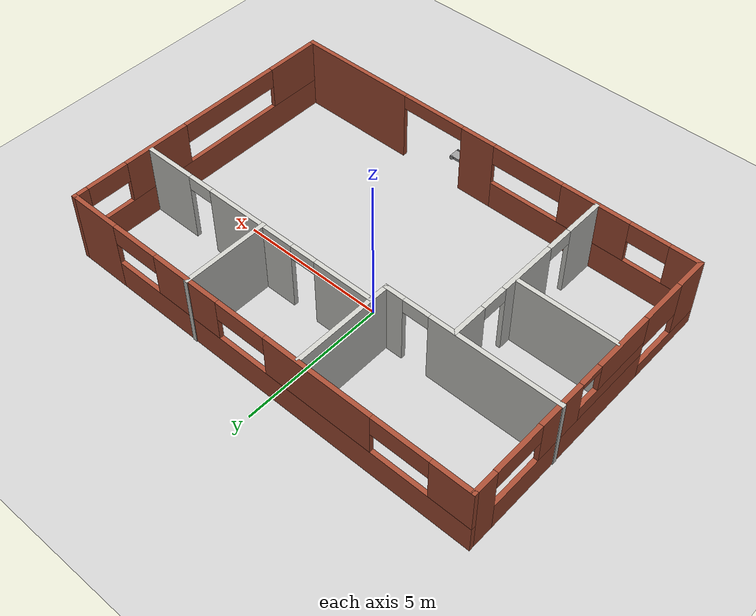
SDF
<sdf version="1.6">
 <world name="default">
  <model name="ground_plane">
   <static>1</static>
   <link name="link">
    <collision name="collision">
     <geometry><plane><normal>0 0 1</normal><size>100 100</size></plane></geometry>
     <surface>
      <contact><collide_bitmask>65535</collide_bitmask></contact>
      <friction><ode><mu>100</mu><mu2>50</mu2></ode></friction>
     </surface>
    </collision>
    <visual name="visual">
     <cast_shadows>0</cast_shadows>
     <geometry><plane><normal>0 0 1</normal><size>100 100</size></plane></geometry>
     <material>
      <script><uri>file://media/materials/scripts/gazebo.material</uri><name>Gazebo/Grey</name></script>
     </material>
    </visual>
   </link>
  </model>
  <model name="MyrobotHome">
   <pose>0.512352 -0.835088 0 0 -0 0</pose>
   <link name="Wall_12">
    <pose>0.011552 -4.93661 0 0 -0 3.14159</pose>
    <visual name="Wall_12_Visual_0">
     <pose>-5.40953 0 1.25 0 -0 0</pose>
     <geometry><box><size>4.18094 0.15 2.5</size></box></geometry>
     <material>
      <script><uri>file://media/materials/scripts/gazebo.material</uri><name>Gazebo/Bricks</name></script>
      <ambient>1 1 1 1</ambient>
     </material>
     <meta><layer>0</layer></meta>
    </visual>
    <collision name="Wall_12_Collision_0">
     <geometry><box><size>4.18094 0.15 2.5</size></box></geometry>
     <pose>-5.40953 0 1.25 0 -0 0</pose>
    </collision>
    <visual name="Wall_12_Visual_1">
     <pose>-0.385262 0 1.25 0 -0 0</pose>
     <geometry><box><size>1.2517 0.15 2.5</size></box></geometry>
     <material>
      <script><uri>file://media/materials/scripts/gazebo.material</uri><name>Gazebo/Bricks</name></script>
      <ambient>1 1 1 1</ambient>
     </material>
     <meta><layer>0</layer></meta>
    </visual>
    <collision name="Wall_12_Collision_1">
     <geometry><box><size>1.2517 0.15 2.5</size></box></geometry>
     <pose>-0.385262 0 1.25 0 -0 0</pose>
    </collision>
    <visual name="Wall_12_Visual_2">
     <pose>3.87029 0 0.5 0 -0 0</pose>
     <geometry><box><size>7.25941 0.15 1</size></box></geometry>
     <material>
      <script><uri>file://media/materials/scripts/gazebo.material</uri><name>Gazebo/Bricks</name></script>
      <ambient>1 1 1 1</ambient>
     </material>
     <meta><layer>0</layer></meta>
    </visual>
    <collision name="Wall_12_Collision_2">
     <geometry><box><size>7.25941 0.15 1</size></box></geometry>
     <pose>3.87029 0 0.5 0 -0 0</pose>
    </collision>
    <visual name="Wall_12_Visual_3">
     <pose>3.93946 0 1.75 0 -0 0</pose>
     <geometry><box><size>2.37775 0.15 1.5</size></box></geometry>
     <material>
      <script><uri>file://media/materials/scripts/gazebo.material</uri><name>Gazebo/Bricks</name></script>
      <ambient>1 1 1 1</ambient>
     </material>
     <meta><layer>0</layer></meta>
    </visual>
    <collision name="Wall_12_Collision_3">
     <geometry><box><size>2.37775 0.15 1.5</size></box></geometry>
     <pose>3.93946 0 1.75 0 -0 0</pose>
    </collision>
    <visual name="Wall_12_Visual_4">
     <pose>6.97567 0 1.75 0 -0 0</pose>
     <geometry><box><size>1.04867 0.15 1.5</size></box></geometry>
     <material>
      <script><uri>file://media/materials/scripts/gazebo.material</uri><name>Gazebo/Bricks</name></script>
      <ambient>1 1 1 1</ambient>
     </material>
     <meta><layer>0</layer></meta>
    </visual>
    <collision name="Wall_12_Collision_4">
     <geometry><box><size>1.04867 0.15 1.5</size></box></geometry>
     <pose>6.97567 0 1.75 0 -0 0</pose>
    </collision>
    <visual name="Wall_12_Visual_5">
     <pose>1.49559 0 2.15 0 -0 0</pose>
     <geometry><box><size>2.51 0.15 0.7</size></box></geometry>
     <material>
      <script><uri>file://media/materials/scripts/gazebo.material</uri><name>Gazebo/Bricks</name></script>
      <ambient>1 1 1 1</ambient>
     </material>
     <meta><layer>0</layer></meta>
    </visual>
    <collision name="Wall_12_Collision_5">
     <geometry><box><size>2.51 0.15 0.7</size></box></geometry>
     <pose>1.49559 0 2.15 0 -0 0</pose>
    </collision>
    <visual name="Wall_12_Visual_6">
     <pose>5.78983 0 2.15 0 -0 0</pose>
     <geometry><box><size>1.323 0.15 0.7</size></box></geometry>
     <material>
      <script><uri>file://media/materials/scripts/gazebo.material</uri><name>Gazebo/Bricks</name></script>
      <ambient>1 1 1 1</ambient>
     </material>
     <meta><layer>0</layer></meta>
    </visual>
    <collision name="Wall_12_Collision_6">
     <geometry><box><size>1.323 0.15 0.7</size></box></geometry>
     <pose>5.78983 0 2.15 0 -0 0</pose>
    </collision>
    <visual name="Wall_12_Visual_7">
     <pose>-2.16508 0 2.25 0 -0 0</pose>
     <geometry><box><size>2.30795 0.15 0.5</size></box></geometry>
     <material>
      <script><uri>file://media/materials/scripts/gazebo.material</uri><name>Gazebo/Bricks</name></script>
      <ambient>1 1 1 1</ambient>
     </material>
     <meta><layer>0</layer></meta>
    </visual>
    <collision name="Wall_12_Collision_7">
     <geometry><box><size>2.30795 0.15 0.5</size></box></geometry>
     <pose>-2.16508 0 2.25 0 -0 0</pose>
    </collision>
   </link>
   <link name="Wall_14">
    <pose>7.43655 -0.011605 0 0 -0 -1.5708</pose>
    <visual name="Wall_14_Visual_0">
     <pose>-4.74176 0 1.25 0 -0 0</pose>
     <geometry><box><size>0.516491 0.15 2.5</size></box></geometry>
     <material>
      <script><uri>file://media/materials/scripts/gazebo.material</uri><name>Gazebo/Bricks</name></script>
      <ambient>1 1 1 1</ambient>
     </material>
     <meta><layer>0</layer></meta>
    </visual>
    <collision name="Wall_14_Collision_0">
     <geometry><box><size>0.516491 0.15 2.5</size></box></geometry>
     <pose>-4.74176 0 1.25 0 -0 0</pose>
    </collision>
    <visual name="Wall_14_Visual_1">
     <pose>0.258245 0 0.5 0 -0 0</pose>
     <geometry><box><size>9.48351 0.15 1</size></box></geometry>
     <material>
      <script><uri>file://media/materials/scripts/gazebo.material</uri><name>Gazebo/Bricks</name></script>
      <ambient>1 1 1 1</ambient>
     </material>
     <meta><layer>0</layer></meta>
    </visual>
    <collision name="Wall_14_Collision_1">
     <geometry><box><size>9.48351 0.15 1</size></box></geometry>
     <pose>0.258245 0 0.5 0 -0 0</pose>
    </collision>
    <visual name="Wall_14_Visual_2">
     <pose>-1.86065 0 1.75 0 -0 0</pose>
     <geometry><box><size>2.35771 0.15 1.5</size></box></geometry>
     <material>
      <script><uri>file://media/materials/scripts/gazebo.material</uri><name>Gazebo/Bricks</name></script>
      <ambient>1 1 1 1</ambient>
     </material>
     <meta><layer>0</layer></meta>
    </visual>
    <collision name="Wall_14_Collision_2">
     <geometry><box><size>2.35771 0.15 1.5</size></box></geometry>
     <pose>-1.86065 0 1.75 0 -0 0</pose>
    </collision>
    <visual name="Wall_14_Visual_3">
     <pose>3.9871 0 1.75 0 -0 0</pose>
     <geometry><box><size>2.0258 0.15 1.5</size></box></geometry>
     <material>
      <script><uri>file://media/materials/scripts/gazebo.material</uri><name>Gazebo/Bricks</name></script>
      <ambient>1 1 1 1</ambient>
     </material>
     <meta><layer>0</layer></meta>
    </visual>
    <collision name="Wall_14_Collision_3">
     <geometry><box><size>2.0258 0.15 1.5</size></box></geometry>
     <pose>3.9871 0 1.75 0 -0 0</pose>
    </collision>
    <visual name="Wall_14_Visual_4">
     <pose>-3.76151 0 2.15 0 -0 0</pose>
     <geometry><box><size>1.444 0.15 0.7</size></box></geometry>
     <material>
      <script><uri>file://media/materials/scripts/gazebo.material</uri><name>Gazebo/Bricks</name></script>
      <ambient>1 1 1 1</ambient>
     </material>
     <meta><layer>0</layer></meta>
    </visual>
    <collision name="Wall_14_Collision_4">
     <geometry><box><size>1.444 0.15 0.7</size></box></geometry>
     <pose>-3.76151 0 2.15 0 -0 0</pose>
    </collision>
    <visual name="Wall_14_Visual_5">
     <pose>1.1462 0 2.15 0 -0 0</pose>
     <geometry><box><size>3.656 0.15 0.7</size></box></geometry>
     <material>
      <script><uri>file://media/materials/scripts/gazebo.material</uri><name>Gazebo/Bricks</name></script>
      <ambient>1 1 1 1</ambient>
     </material>
     <meta><layer>0</layer></meta>
    </visual>
    <collision name="Wall_14_Collision_5">
     <geometry><box><size>3.656 0.15 0.7</size></box></geometry>
     <pose>1.1462 0 2.15 0 -0 0</pose>
    </collision>
   </link>
   <link name="Wall_17">
    <collision name="Wall_17_Collision">
     <geometry><box><size>3.5 0.15 2.5</size></box></geometry>
     <pose>0 0 1.25 0 -0 0</pose>
    </collision>
    <visual name="Wall_17_Visual">
     <pose>0 0 1.25 0 -0 0</pose>
     <geometry><box><size>3.5 0.15 2.5</size></box></geometry>
     <material>
      <script><uri>file://media/materials/scripts/gazebo.material</uri><name>Gazebo/CeilingTiled</name></script>
      <ambient>1 1 1 1</ambient>
     </material>
     <meta><layer>0</layer></meta>
    </visual>
    <pose>-1.58655 3.16783 0 0 -0 -1.5708</pose>
   </link>
   <link name="Wall_19">
    <pose>-4.51155 1.49283 0 0 -0 3.14159</pose>
    <visual name="Wall_19_Visual_0">
     <pose>-2.64038 0 1.25 0 -0 0</pose>
     <geometry><box><size>0.719238 0.15 2.5</size></box></geometry>
     <material>
      <script><uri>file://media/materials/scripts/gazebo.material</uri><name>Gazebo/CeilingTiled</name></script>
      <ambient>1 1 1 1</ambient>
     </material>
     <meta><layer>0</layer></meta>
    </visual>
    <collision name="Wall_19_Collision_0">
     <geometry><box><size>0.719238 0.15 2.5</size></box></geometry>
     <pose>-2.64038 0 1.25 0 -0 0</pose>
    </collision>
    <visual name="Wall_19_Visual_1">
     <pose>0.809619 0 1.25 0 -0 0</pose>
     <geometry><box><size>4.38076 0.15 2.5</size></box></geometry>
     <material>
      <script><uri>file://media/materials/scripts/gazebo.material</uri><name>Gazebo/CeilingTiled</name></script>
      <ambient>1 1 1 1</ambient>
     </material>
     <meta><layer>0</layer></meta>
    </visual>
    <collision name="Wall_19_Collision_1">
     <geometry><box><size>4.38076 0.15 2.5</size></box></geometry>
     <pose>0.809619 0 1.25 0 -0 0</pose>
    </collision>
    <visual name="Wall_19_Visual_2">
     <pose>-1.83076 0 2.25 0 -0 0</pose>
     <geometry><box><size>0.9 0.15 0.5</size></box></geometry>
     <material>
      <script><uri>file://media/materials/scripts/gazebo.material</uri><name>Gazebo/CeilingTiled</name></script>
      <ambient>1 1 1 1</ambient>
     </material>
     <meta><layer>0</layer></meta>
    </visual>
    <collision name="Wall_19_Collision_2">
     <geometry><box><size>0.9 0.15 0.5</size></box></geometry>
     <pose>-1.83076 0 2.25 0 -0 0</pose>
    </collision>
   </link>
   <link name="Wall_2">
    <pose>0.011552 4.9134 0 0 -0 3.14159</pose>
    <visual name="Wall_2_Visual_0">
     <pose>-6.56615 0 1.25 0 -0 0</pose>
     <geometry><box><size>1.86771 0.15 2.5</size></box></geometry>
     <material>
      <script><uri>file://media/materials/scripts/gazebo.material</uri><name>Gazebo/Bricks</name></script>
      <ambient>1 1 1 1</ambient>
     </material>
     <meta><layer>0</layer></meta>
    </visual>
    <collision name="Wall_2_Collision_0">
     <geometry><box><size>1.86771 0.15 2.5</size></box></geometry>
     <pose>-6.56615 0 1.25 0 -0 0</pose>
    </collision>
    <visual name="Wall_2_Visual_1">
     <pose>0.933854 0 0.5 0 -0 0</pose>
     <geometry><box><size>13.1323 0.15 1</size></box></geometry>
     <material>
      <script><uri>file://media/materials/scripts/gazebo.material</uri><name>Gazebo/Bricks</name></script>
      <ambient>1 1 1 1</ambient>
     </material>
     <meta><layer>0</layer></meta>
    </visual>
    <collision name="Wall_2_Collision_1">
     <geometry><box><size>13.1323 0.15 1</size></box></geometry>
     <pose>0.933854 0 0.5 0 -0 0</pose>
    </collision>
    <visual name="Wall_2_Visual_2">
     <pose>-2.658 0 1.75 0 -0 0</pose>
     <geometry><box><size>2.49858 0.15 1.5</size></box></geometry>
     <material>
      <script><uri>file://media/materials/scripts/gazebo.material</uri><name>Gazebo/Bricks</name></script>
      <ambient>1 1 1 1</ambient>
     </material>
     <meta><layer>0</layer></meta>
    </visual>
    <collision name="Wall_2_Collision_2">
     <geometry><box><size>2.49858 0.15 1.5</size></box></geometry>
     <pose>-2.658 0 1.75 0 -0 0</pose>
    </collision>
    <visual name="Wall_2_Visual_3">
     <pose>2.28018 0 1.75 0 -0 0</pose>
     <geometry><box><size>3.7658 0.15 1.5</size></box></geometry>
     <material>
      <script><uri>file://media/materials/scripts/gazebo.material</uri><name>Gazebo/Bricks</name></script>
      <ambient>1 1 1 1</ambient>
     </material>
     <meta><layer>0</layer></meta>
    </visual>
    <collision name="Wall_2_Collision_3">
     <geometry><box><size>3.7658 0.15 1.5</size></box></geometry>
     <pose>2.28018 0 1.75 0 -0 0</pose>
    </collision>
    <visual name="Wall_2_Visual_4">
     <pose>6.79454 0 1.75 0 -0 0</pose>
     <geometry><box><size>1.41091 0.15 1.5</size></box></geometry>
     <material>
      <script><uri>file://media/materials/scripts/gazebo.material</uri><name>Gazebo/Bricks</name></script>
      <ambient>1 1 1 1</ambient>
     </material>
     <meta><layer>0</layer></meta>
    </visual>
    <collision name="Wall_2_Collision_4">
     <geometry><box><size>1.41091 0.15 1.5</size></box></geometry>
     <pose>6.79454 0 1.75 0 -0 0</pose>
    </collision>
    <visual name="Wall_2_Visual_5">
     <pose>-4.76979 0 2.15 0 -0 0</pose>
     <geometry><box><size>1.725 0.15 0.7</size></box></geometry>
     <material>
      <script><uri>file://media/materials/scripts/gazebo.material</uri><name>Gazebo/Bricks</name></script>
      <ambient>1 1 1 1</ambient>
     </material>
     <meta><layer>0</layer></meta>
    </visual>
    <collision name="Wall_2_Collision_5">
     <geometry><box><size>1.725 0.15 0.7</size></box></geometry>
     <pose>-4.76979 0 2.15 0 -0 0</pose>
    </collision>
    <visual name="Wall_2_Visual_6">
     <pose>-0.505715 0 2.15 0 -0 0</pose>
     <geometry><box><size>1.806 0.15 0.7</size></box></geometry>
     <material>
      <script><uri>file://media/materials/scripts/gazebo.material</uri><name>Gazebo/Bricks</name></script>
      <ambient>1 1 1 1</ambient>
     </material>
     <meta><layer>0</layer></meta>
    </visual>
    <collision name="Wall_2_Collision_6">
     <geometry><box><size>1.806 0.15 0.7</size></box></geometry>
     <pose>-0.505715 0 2.15 0 -0 0</pose>
    </collision>
    <visual name="Wall_2_Visual_7">
     <pose>5.12608 0 2.15 0 -0 0</pose>
     <geometry><box><size>1.926 0.15 0.7</size></box></geometry>
     <material>
      <script><uri>file://media/materials/scripts/gazebo.material</uri><name>Gazebo/Bricks</name></script>
      <ambient>1 1 1 1</ambient>
     </material>
     <meta><layer>0</layer></meta>
    </visual>
    <collision name="Wall_2_Collision_7">
     <geometry><box><size>1.926 0.15 0.7</size></box></geometry>
     <pose>5.12608 0 2.15 0 -0 0</pose>
    </collision>
   </link>
   <link name="Wall_21">
    <collision name="Wall_21_Collision">
     <geometry><box><size>3 0.15 2.5</size></box></geometry>
     <pose>0 0 1.25 0 -0 0</pose>
    </collision>
    <visual name="Wall_21_Visual">
     <pose>0 0 1.25 0 -0 0</pose>
     <geometry><box><size>3 0.15 2.5</size></box></geometry>
     <material>
      <script><uri>file://media/materials/scripts/gazebo.material</uri><name>Gazebo/CeilingTiled</name></script>
      <ambient>1 1 1 1</ambient>
     </material>
     <meta><layer>0</layer></meta>
    </visual>
    <pose>2.56885 3.5116 0 0 -0 -1.5708</pose>
   </link>
   <link name="Wall_24">
    <pose>2.89068 2.10059 0 0 -0 0</pose>
    <visual name="Wall_24_Visual_0">
     <pose>-3.45052 0 1.25 0 -0 0</pose>
     <geometry><box><size>2.09897 0.15 2.5</size></box></geometry>
     <material>
      <script><uri>file://media/materials/scripts/gazebo.material</uri><name>Gazebo/CeilingTiled</name></script>
      <ambient>1 1 1 1</ambient>
     </material>
     <meta><layer>0</layer></meta>
    </visual>
    <collision name="Wall_24_Collision_0">
     <geometry><box><size>2.09897 0.15 2.5</size></box></geometry>
     <pose>-3.45052 0 1.25 0 -0 0</pose>
    </collision>
    <visual name="Wall_24_Visual_1">
     <pose>0.150838 0 1.25 0 -0 0</pose>
     <geometry><box><size>3.30374 0.15 2.5</size></box></geometry>
     <material>
      <script><uri>file://media/materials/scripts/gazebo.material</uri><name>Gazebo/CeilingTiled</name></script>
      <ambient>1 1 1 1</ambient>
     </material>
     <meta><layer>0</layer></meta>
    </visual>
    <collision name="Wall_24_Collision_1">
     <geometry><box><size>3.30374 0.15 2.5</size></box></geometry>
     <pose>0.150838 0 1.25 0 -0 0</pose>
    </collision>
    <visual name="Wall_24_Visual_2">
     <pose>3.60135 0 1.25 0 -0 0</pose>
     <geometry><box><size>1.79729 0.15 2.5</size></box></geometry>
     <material>
      <script><uri>file://media/materials/scripts/gazebo.material</uri><name>Gazebo/CeilingTiled</name></script>
      <ambient>1 1 1 1</ambient>
     </material>
     <meta><layer>0</layer></meta>
    </visual>
    <collision name="Wall_24_Collision_2">
     <geometry><box><size>1.79729 0.15 2.5</size></box></geometry>
     <pose>3.60135 0 1.25 0 -0 0</pose>
    </collision>
    <visual name="Wall_24_Visual_3">
     <pose>-1.95103 0 2.25 0 -0 0</pose>
     <geometry><box><size>0.9 0.15 0.5</size></box></geometry>
     <material>
      <script><uri>file://media/materials/scripts/gazebo.material</uri><name>Gazebo/CeilingTiled</name></script>
      <ambient>1 1 1 1</ambient>
     </material>
     <meta><layer>0</layer></meta>
    </visual>
    <collision name="Wall_24_Collision_3">
     <geometry><box><size>0.9 0.15 0.5</size></box></geometry>
     <pose>-1.95103 0 2.25 0 -0 0</pose>
    </collision>
    <visual name="Wall_24_Visual_4">
     <pose>2.25271 0 2.25 0 -0 0</pose>
     <geometry><box><size>0.9 0.15 0.5</size></box></geometry>
     <material>
      <script><uri>file://media/materials/scripts/gazebo.material</uri><name>Gazebo/CeilingTiled</name></script>
      <ambient>1 1 1 1</ambient>
     </material>
     <meta><layer>0</layer></meta>
    </visual>
    <collision name="Wall_24_Collision_4">
     <geometry><box><size>0.9 0.15 0.5</size></box></geometry>
     <pose>2.25271 0 2.25 0 -0 0</pose>
    </collision>
   </link>
   <link name="Wall_3">
    <pose>-7.41345 -0.011605 0 0 -0 -1.5708</pose>
    <visual name="Wall_3_Visual_0">
     <pose>-4.56075 0 1.25 0 -0 0</pose>
     <geometry><box><size>0.8785 0.15 2.5</size></box></geometry>
     <material>
      <script><uri>file://media/materials/scripts/gazebo.material</uri><name>Gazebo/Bricks</name></script>
      <ambient>1 1 1 1</ambient>
     </material>
     <meta><layer>0</layer></meta>
    </visual>
    <collision name="Wall_3_Collision_0">
     <geometry><box><size>0.8785 0.15 2.5</size></box></geometry>
     <pose>-4.56075 0 1.25 0 -0 0</pose>
    </collision>
    <visual name="Wall_3_Visual_1">
     <pose>-0.923333 0 0.5 0 -0 0</pose>
     <geometry><box><size>6.39633 0.15 1</size></box></geometry>
     <material>
      <script><uri>file://media/materials/scripts/gazebo.material</uri><name>Gazebo/Bricks</name></script>
      <ambient>1 1 1 1</ambient>
     </material>
     <meta><layer>0</layer></meta>
    </visual>
    <collision name="Wall_3_Collision_1">
     <geometry><box><size>6.39633 0.15 1</size></box></geometry>
     <pose>-0.923333 0 0.5 0 -0 0</pose>
    </collision>
    <visual name="Wall_3_Visual_2">
     <pose>3.63742 0 0.25 0 -0 0</pose>
     <geometry><box><size>2.72517 0.15 0.5</size></box></geometry>
     <material>
      <script><uri>file://media/materials/scripts/gazebo.material</uri><name>Gazebo/Bricks</name></script>
      <ambient>1 1 1 1</ambient>
     </material>
     <meta><layer>0</layer></meta>
    </visual>
    <collision name="Wall_3_Collision_2">
     <geometry><box><size>2.72517 0.15 0.5</size></box></geometry>
     <pose>3.63742 0 0.25 0 -0 0</pose>
    </collision>
    <visual name="Wall_3_Visual_3">
     <pose>4.42963 0 1.5 0 -0 0</pose>
     <geometry><box><size>1.14074 0.15 2</size></box></geometry>
     <material>
      <script><uri>file://media/materials/scripts/gazebo.material</uri><name>Gazebo/Bricks</name></script>
      <ambient>1 1 1 1</ambient>
     </material>
     <meta><layer>0</layer></meta>
    </visual>
    <collision name="Wall_3_Collision_3">
     <geometry><box><size>1.14074 0.15 2</size></box></geometry>
     <pose>4.42963 0 1.5 0 -0 0</pose>
    </collision>
    <visual name="Wall_3_Visual_4">
     <pose>-1.49862 0 1.75 0 -0 0</pose>
     <geometry><box><size>1.67375 0.15 1.5</size></box></geometry>
     <material>
      <script><uri>file://media/materials/scripts/gazebo.material</uri><name>Gazebo/Bricks</name></script>
      <ambient>1 1 1 1</ambient>
     </material>
     <meta><layer>0</layer></meta>
    </visual>
    <collision name="Wall_3_Collision_4">
     <geometry><box><size>1.67375 0.15 1.5</size></box></geometry>
     <pose>-1.49862 0 1.75 0 -0 0</pose>
    </collision>
    <visual name="Wall_3_Visual_5">
     <pose>0.806543 0 1.25 0 -0 0</pose>
     <geometry><box><size>2.93658 0.15 0.5</size></box></geometry>
     <material>
      <script><uri>file://media/materials/scripts/gazebo.material</uri><name>Gazebo/Bricks</name></script>
      <ambient>1 1 1 1</ambient>
     </material>
     <meta><layer>0</layer></meta>
    </visual>
    <collision name="Wall_3_Collision_5">
     <geometry><box><size>2.93658 0.15 0.5</size></box></geometry>
     <pose>0.806543 0 1.25 0 -0 0</pose>
    </collision>
    <visual name="Wall_3_Visual_6">
     <pose>3.06705 0 1.9 0 -0 0</pose>
     <geometry><box><size>1.58443 0.15 1.2</size></box></geometry>
     <material>
      <script><uri>file://media/materials/scripts/gazebo.material</uri><name>Gazebo/Bricks</name></script>
      <ambient>1 1 1 1</ambient>
     </material>
     <meta><layer>0</layer></meta>
    </visual>
    <collision name="Wall_3_Collision_6">
     <geometry><box><size>1.58443 0.15 1.2</size></box></geometry>
     <pose>3.06705 0 1.9 0 -0 0</pose>
    </collision>
    <visual name="Wall_3_Visual_7">
     <pose>1.20654 0 2 0 -0 0</pose>
     <geometry><box><size>2.13658 0.15 1</size></box></geometry>
     <material>
      <script><uri>file://media/materials/scripts/gazebo.material</uri><name>Gazebo/Bricks</name></script>
      <ambient>1 1 1 1</ambient>
     </material>
     <meta><layer>0</layer></meta>
    </visual>
    <collision name="Wall_3_Collision_7">
     <geometry><box><size>2.13658 0.15 1</size></box></geometry>
     <pose>1.20654 0 2 0 -0 0</pose>
    </collision>
    <visual name="Wall_3_Visual_8">
     <pose>-3.2285 0 2.15 0 -0 0</pose>
     <geometry><box><size>1.786 0.15 0.7</size></box></geometry>
     <material>
      <script><uri>file://media/materials/scripts/gazebo.material</uri><name>Gazebo/Bricks</name></script>
      <ambient>1 1 1 1</ambient>
     </material>
     <meta><layer>0</layer></meta>
    </visual>
    <collision name="Wall_3_Collision_8">
     <geometry><box><size>1.786 0.15 0.7</size></box></geometry>
     <pose>-3.2285 0 2.15 0 -0 0</pose>
    </collision>
    <visual name="Wall_3_Visual_9">
     <pose>-0.261748 0 2.4 0 -0 0</pose>
     <geometry><box><size>0.8 0.15 0.2</size></box></geometry>
     <material>
      <script><uri>file://media/materials/scripts/gazebo.material</uri><name>Gazebo/Bricks</name></script>
      <ambient>1 1 1 1</ambient>
     </material>
     <meta><layer>0</layer></meta>
    </visual>
    <collision name="Wall_3_Collision_9">
     <geometry><box><size>0.8 0.15 0.2</size></box></geometry>
     <pose>-0.261748 0 2.4 0 -0 0</pose>
    </collision>
   </link>
   <link name="Wall_5">
    <pose>-3.98253 -1.68978 0 0 -0 1.5708</pose>
    <visual name="Wall_5_Visual_0">
     <pose>-2.53941 0 1.25 0 -0 0</pose>
     <geometry><box><size>1.42119 0.15 2.5</size></box></geometry>
     <material>
      <script><uri>file://media/materials/scripts/gazebo.material</uri><name>Gazebo/CeilingTiled</name></script>
      <ambient>1 1 1 1</ambient>
     </material>
     <meta><layer>0</layer></meta>
    </visual>
    <collision name="Wall_5_Collision_0">
     <geometry><box><size>1.42119 0.15 2.5</size></box></geometry>
     <pose>-2.53941 0 1.25 0 -0 0</pose>
    </collision>
    <visual name="Wall_5_Visual_1">
     <pose>0.089477 0 1.25 0 -0 0</pose>
     <geometry><box><size>2.03658 0.15 2.5</size></box></geometry>
     <material>
      <script><uri>file://media/materials/scripts/gazebo.material</uri><name>Gazebo/CeilingTiled</name></script>
      <ambient>1 1 1 1</ambient>
     </material>
     <meta><layer>0</layer></meta>
    </visual>
    <collision name="Wall_5_Collision_1">
     <geometry><box><size>2.03658 0.15 2.5</size></box></geometry>
     <pose>0.089477 0 1.25 0 -0 0</pose>
    </collision>
    <visual name="Wall_5_Visual_2">
     <pose>2.62888 0 1.25 0 -0 0</pose>
     <geometry><box><size>1.24223 0.15 2.5</size></box></geometry>
     <material>
      <script><uri>file://media/materials/scripts/gazebo.material</uri><name>Gazebo/CeilingTiled</name></script>
      <ambient>1 1 1 1</ambient>
     </material>
     <meta><layer>0</layer></meta>
    </visual>
    <collision name="Wall_5_Collision_2">
     <geometry><box><size>1.24223 0.15 2.5</size></box></geometry>
     <pose>2.62888 0 1.25 0 -0 0</pose>
    </collision>
    <visual name="Wall_5_Visual_3">
     <pose>-1.37881 0 2.25 0 -0 0</pose>
     <geometry><box><size>0.9 0.15 0.5</size></box></geometry>
     <material>
      <script><uri>file://media/materials/scripts/gazebo.material</uri><name>Gazebo/CeilingTiled</name></script>
      <ambient>1 1 1 1</ambient>
     </material>
     <meta><layer>0</layer></meta>
    </visual>
    <collision name="Wall_5_Collision_3">
     <geometry><box><size>0.9 0.15 0.5</size></box></geometry>
     <pose>-1.37881 0 2.25 0 -0 0</pose>
    </collision>
    <visual name="Wall_5_Visual_4">
     <pose>1.55777 0 2.25 0 -0 0</pose>
     <geometry><box><size>0.9 0.15 0.5</size></box></geometry>
     <material>
      <script><uri>file://media/materials/scripts/gazebo.material</uri><name>Gazebo/CeilingTiled</name></script>
      <ambient>1 1 1 1</ambient>
     </material>
     <meta><layer>0</layer></meta>
    </visual>
    <collision name="Wall_5_Collision_4">
     <geometry><box><size>0.9 0.15 0.5</size></box></geometry>
     <pose>1.55777 0 2.25 0 -0 0</pose>
    </collision>
   </link>
   <link name="Wall_9">
    <collision name="Wall_9_Collision">
     <geometry><box><size>3.5 0.15 2.5</size></box></geometry>
     <pose>0 0 1.25 0 -0 0</pose>
    </collision>
    <visual name="Wall_9_Visual">
     <pose>0 0 1.25 0 -0 0</pose>
     <geometry><box><size>3.5 0.15 2.5</size></box></geometry>
     <material>
      <script><uri>file://media/materials/scripts/gazebo.material</uri><name>Gazebo/CeilingTiled</name></script>
      <ambient>1 1 1 1</ambient>
     </material>
     <meta><layer>0</layer></meta>
    </visual>
    <pose>-5.6665 -1.07172 0 0 -0 0</pose>
   </link>
   <static>1</static>
  </model>
  <model name="Myrobot_0">
   <link name="link_0">
    <pose>-0.002689 1e-06 0 0 -0 0</pose>
    <inertial>
     <mass>0.0159423</mass>
     <inertia>
      <ixx>0.00016276</ixx>
      <ixy>0</ixy>
      <ixz>0</ixz>
      <iyy>0.00040767</iyy>
      <iyz>0</iyz>
      <izz>0.00055086</izz>
     </inertia>
    </inertial>
    <visual name="visual">
     <geometry><box><size>0.547262 0.339328 0.085835</size></box></geometry>
     <material>
      <lighting>1</lighting>
      <script><uri>file://media/materials/scripts/gazebo.material</uri><name>Gazebo/Grey</name></script>
      <shader type="pixel"><normal_map>__default__</normal_map></shader>
      <ambient>0.3 0.3 0.3 1</ambient>
      <diffuse>0.7 0.7 0.7 1</diffuse>
      <specular>0.01 0.01 0.01 1</specular>
      <emissive>0 0 0 1</emissive>
     </material>
    </visual>
    <collision name="collision">
     <geometry><box><size>0.547262 0.339328 0.085835</size></box></geometry>
     <surface>
      <friction>
       <ode><mu>1</mu><mu2>1</mu2><fdir1>0 0 0</fdir1><slip1>0</slip1><slip2>0</slip2></ode>
       <torsional>
        <coefficient>1</coefficient>
        <patch_radius>0</patch_radius>
        <surface_radius>0</surface_radius>
        <use_patch_radius>1</use_patch_radius>
        <ode><slip>0</slip></ode>
       </torsional>
      </friction>
      <bounce><restitution_coefficient>0</restitution_coefficient><threshold>1e+06</threshold></bounce>
      <contact>
       <collide_without_contact>0</collide_without_contact>
       <collide_without_contact_bitmask>1</collide_without_contact_bitmask>
       <collide_bitmask>1</collide_bitmask>
       <ode>
        <soft_cfm>0</soft_cfm>
        <soft_erp>0.2</soft_erp>
        <kp>1e+13</kp>
        <kd>1</kd>
        <max_vel>0.01</max_vel>
        <min_depth>0</min_depth>
       </ode>
       <bullet>
        <split_impulse>1</split_impulse>
        <split_impulse_penetration_threshold>-0.01</split_impulse_penetration_threshold>
        <soft_cfm>0</soft_cfm>
        <soft_erp>0.2</soft_erp>
        <kp>1e+13</kp>
        <kd>1</kd>
       </bullet>
      </contact>
     </surface>
    </collision>
   </link>
   <link name="link_1">
    <pose>0.212103 -0.187488 0 1.5707 -0 0</pose>
    <inertial>
     <mass>0.000727163</mass>
     <inertia>
      <ixx>1.00456e-06</ixx>
      <ixy>0</ixy>
      <ixz>0</ixz>
      <iyy>1.00456e-06</iyy>
      <iyz>0</iyz>
      <izz>1.85534e-06</izz>
     </inertia>
    </inertial>
    <visual name="visual">
     <geometry><cylinder><radius>0.0714349</radius><length>0.0356226</length></cylinder></geometry>
     <material>
      <lighting>1</lighting>
      <script><uri>file://media/materials/scripts/gazebo.material</uri><name>Gazebo/Grey</name></script>
      <shader type="pixel"><normal_map>__default__</normal_map></shader>
      <ambient>0.3 0.3 0.3 1</ambient>
      <diffuse>0.7 0.7 0.7 1</diffuse>
      <specular>0.01 0.01 0.01 1</specular>
      <emissive>0 0 0 1</emissive>
     </material>
    </visual>
    <collision name="collision">
     <geometry><cylinder><radius>0.071435</radius><length>0.035623</length></cylinder></geometry>
     <surface>
      <friction>
       <ode><mu>1</mu><mu2>1</mu2><fdir1>0 0 0</fdir1><slip1>0</slip1><slip2>0</slip2></ode>
       <torsional>
        <coefficient>1</coefficient>
        <patch_radius>0</patch_radius>
        <surface_radius>0</surface_radius>
        <use_patch_radius>1</use_patch_radius>
        <ode><slip>0</slip></ode>
       </torsional>
      </friction>
      <bounce><restitution_coefficient>0</restitution_coefficient><threshold>1e+06</threshold></bounce>
      <contact>
       <collide_without_contact>0</collide_without_contact>
       <collide_without_contact_bitmask>1</collide_without_contact_bitmask>
       <collide_bitmask>1</collide_bitmask>
       <ode>
        <soft_cfm>0</soft_cfm>
        <soft_erp>0.2</soft_erp>
        <kp>1e+13</kp>
        <kd>1</kd>
        <max_vel>0.01</max_vel>
        <min_depth>0</min_depth>
       </ode>
       <bullet>
        <split_impulse>1</split_impulse>
        <split_impulse_penetration_threshold>-0.01</split_impulse_penetration_threshold>
        <soft_cfm>0</soft_cfm>
        <soft_erp>0.2</soft_erp>
        <kp>1e+13</kp>
        <kd>1</kd>
       </bullet>
      </contact>
     </surface>
    </collision>
   </link>
   <link name="link_1_clone">
    <pose>0.199507 0.187484 0 1.5707 -0 0</pose>
    <inertial>
     <mass>0.000727163</mass>
     <inertia>
      <ixx>1.00456e-06</ixx>
      <ixy>0</ixy>
      <ixz>0</ixz>
      <iyy>1.00456e-06</iyy>
      <iyz>0</iyz>
      <izz>1.85534e-06</izz>
     </inertia>
    </inertial>
    <visual name="visual">
     <geometry><cylinder><radius>0.0714349</radius><length>0.0356226</length></cylinder></geometry>
     <material>
      <lighting>1</lighting>
      <script><uri>file://media/materials/scripts/gazebo.material</uri><name>Gazebo/Grey</name></script>
      <shader type="pixel"><normal_map>__default__</normal_map></shader>
      <ambient>0.3 0.3 0.3 1</ambient>
      <diffuse>0.7 0.7 0.7 1</diffuse>
      <specular>0.01 0.01 0.01 1</specular>
      <emissive>0 0 0 1</emissive>
     </material>
    </visual>
    <collision name="collision">
     <geometry><cylinder><radius>0.071435</radius><length>0.035623</length></cylinder></geometry>
     <surface>
      <friction>
       <ode><mu>1</mu><mu2>1</mu2><fdir1>0 0 0</fdir1><slip1>0</slip1><slip2>0</slip2></ode>
       <torsional>
        <coefficient>1</coefficient>
        <patch_radius>0</patch_radius>
        <surface_radius>0</surface_radius>
        <use_patch_radius>1</use_patch_radius>
        <ode><slip>0</slip></ode>
       </torsional>
      </friction>
      <bounce><restitution_coefficient>0</restitution_coefficient><threshold>1e+06</threshold></bounce>
      <contact>
       <collide_without_contact>0</collide_without_contact>
       <collide_without_contact_bitmask>1</collide_without_contact_bitmask>
       <collide_bitmask>1</collide_bitmask>
       <ode>
        <soft_cfm>0</soft_cfm>
        <soft_erp>0.2</soft_erp>
        <kp>1e+13</kp>
        <kd>1</kd>
        <max_vel>0.01</max_vel>
        <min_depth>0</min_depth>
       </ode>
       <bullet>
        <split_impulse>1</split_impulse>
        <split_impulse_penetration_threshold>-0.01</split_impulse_penetration_threshold>
        <soft_cfm>0</soft_cfm>
        <soft_erp>0.2</soft_erp>
        <kp>1e+13</kp>
        <kd>1</kd>
       </bullet>
      </contact>
     </surface>
    </collision>
   </link>
   <link name="link_1_clone_0">
    <pose>-0.204885 -0.187481 0 1.5707 -0 0</pose>
    <inertial>
     <mass>0.00072716</mass>
     <inertia><ixx>1e-06</ixx><ixy>0</ixy><ixz>0</ixz><iyy>1e-06</iyy><iyz>0</iyz><izz>1.86e-06</izz></inertia>
    </inertial>
    <visual name="visual">
     <geometry><cylinder><radius>0.0714349</radius><length>0.0356226</length></cylinder></geometry>
     <material>
      <lighting>1</lighting>
      <script><uri>file://media/materials/scripts/gazebo.material</uri><name>Gazebo/Grey</name></script>
      <shader type="pixel"><normal_map>__default__</normal_map></shader>
      <ambient>0.3 0.3 0.3 1</ambient>
      <diffuse>0.7 0.7 0.7 1</diffuse>
      <specular>0.01 0.01 0.01 1</specular>
      <emissive>0 0 0 1</emissive>
     </material>
    </visual>
    <collision name="collision">
     <geometry><cylinder><radius>0.071435</radius><length>0.035623</length></cylinder></geometry>
     <surface>
      <friction>
       <ode><mu>1</mu><mu2>1</mu2><fdir1>0 0 0</fdir1><slip1>0</slip1><slip2>0</slip2></ode>
       <torsional>
        <coefficient>1</coefficient>
        <patch_radius>0</patch_radius>
        <surface_radius>0</surface_radius>
        <use_patch_radius>1</use_patch_radius>
        <ode><slip>0</slip></ode>
       </torsional>
      </friction>
      <bounce><restitution_coefficient>0</restitution_coefficient><threshold>1e+06</threshold></bounce>
      <contact>
       <collide_without_contact>0</collide_without_contact>
       <collide_without_contact_bitmask>1</collide_without_contact_bitmask>
       <collide_bitmask>1</collide_bitmask>
       <ode>
        <soft_cfm>0</soft_cfm>
        <soft_erp>0.2</soft_erp>
        <kp>1e+13</kp>
        <kd>1</kd>
        <max_vel>0.01</max_vel>
        <min_depth>0</min_depth>
       </ode>
       <bullet>
        <split_impulse>1</split_impulse>
        <split_impulse_penetration_threshold>-0.01</split_impulse_penetration_threshold>
        <soft_cfm>0</soft_cfm>
        <soft_erp>0.2</soft_erp>
        <kp>1e+13</kp>
        <kd>1</kd>
       </bullet>
      </contact>
     </surface>
    </collision>
   </link>
   <link name="link_1_clone_1">
    <pose>-0.204885 0.187484 0 1.5707 -0 0</pose>
    <inertial>
     <mass>0.000727163</mass>
     <inertia>
      <ixx>1.00456e-06</ixx>
      <ixy>0</ixy>
      <ixz>0</ixz>
      <iyy>1.00456e-06</iyy>
      <iyz>0</iyz>
      <izz>1.85534e-06</izz>
     </inertia>
    </inertial>
    <visual name="visual">
     <geometry><cylinder><radius>0.0714349</radius><length>0.0356226</length></cylinder></geometry>
     <material>
      <lighting>1</lighting>
      <script><uri>file://media/materials/scripts/gazebo.material</uri><name>Gazebo/Grey</name></script>
      <shader type="pixel"><normal_map>__default__</normal_map></shader>
      <ambient>0.3 0.3 0.3 1</ambient>
      <diffuse>0.7 0.7 0.7 1</diffuse>
      <specular>0.01 0.01 0.01 1</specular>
      <emissive>0 0 0 1</emissive>
     </material>
    </visual>
    <collision name="collision">
     <geometry><cylinder><radius>0.071435</radius><length>0.035623</length></cylinder></geometry>
     <surface>
      <friction>
       <ode><mu>1</mu><mu2>1</mu2><fdir1>0 0 0</fdir1><slip1>0</slip1><slip2>0</slip2></ode>
       <torsional>
        <coefficient>1</coefficient>
        <patch_radius>0</patch_radius>
        <surface_radius>0</surface_radius>
        <use_patch_radius>1</use_patch_radius>
        <ode><slip>0</slip></ode>
       </torsional>
      </friction>
      <bounce><restitution_coefficient>0</restitution_coefficient><threshold>1e+06</threshold></bounce>
      <contact>
       <collide_without_contact>0</collide_without_contact>
       <collide_without_contact_bitmask>1</collide_without_contact_bitmask>
       <collide_bitmask>1</collide_bitmask>
       <ode>
        <soft_cfm>0</soft_cfm>
        <soft_erp>0.2</soft_erp>
        <kp>1e+13</kp>
        <kd>1</kd>
        <max_vel>0.01</max_vel>
        <min_depth>0</min_depth>
       </ode>
       <bullet>
        <split_impulse>1</split_impulse>
        <split_impulse_penetration_threshold>-0.01</split_impulse_penetration_threshold>
        <soft_cfm>0</soft_cfm>
        <soft_erp>0.2</soft_erp>
        <kp>1e+13</kp>
        <kd>1</kd>
       </bullet>
      </contact>
     </surface>
    </collision>
   </link>
   <joint name="link_0_JOINT_1" type="revolute">
    <parent>link_0</parent>
    <child>link_1_clone_0</child>
    <axis>
     <xyz>0 0 1</xyz>
     <use_parent_model_frame>0</use_parent_model_frame>
     <limit>
      <lower>-1.79769e+308</lower>
      <upper>1.79769e+308</upper>
      <effort>-1</effort>
      <velocity>-1</velocity>
     </limit>
     <dynamics>
      <spring_reference>0</spring_reference>
      <spring_stiffness>0</spring_stiffness>
      <damping>0</damping>
     </dynamics>
    </axis>
    <physics>
     <ode><limit><cfm>0</cfm><erp>0.2</erp></limit><suspension><cfm>0</cfm><erp>0.2</erp></suspension></ode>
    </physics>
   </joint>
   <joint name="link_0_JOINT_2" type="revolute">
    <parent>link_0</parent>
    <child>link_1_clone</child>
    <axis>
     <xyz>0 0 1</xyz>
     <use_parent_model_frame>0</use_parent_model_frame>
     <limit>
      <lower>-1.79769e+308</lower>
      <upper>1.79769e+308</upper>
      <effort>-1</effort>
      <velocity>-1</velocity>
     </limit>
     <dynamics>
      <spring_reference>0</spring_reference>
      <spring_stiffness>0</spring_stiffness>
      <damping>0</damping>
     </dynamics>
    </axis>
    <physics>
     <ode><limit><cfm>0</cfm><erp>0.2</erp></limit><suspension><cfm>0</cfm><erp>0.2</erp></suspension></ode>
    </physics>
   </joint>
   <joint name="link_0_JOINT_3" type="revolute">
    <parent>link_0</parent>
    <child>link_1_clone_1</child>
    <axis>
     <xyz>0 0 1</xyz>
     <use_parent_model_frame>0</use_parent_model_frame>
     <limit>
      <lower>-1.79769e+308</lower>
      <upper>1.79769e+308</upper>
      <effort>-1</effort>
      <velocity>-1</velocity>
     </limit>
     <dynamics>
      <spring_reference>0</spring_reference>
      <spring_stiffness>0</spring_stiffness>
      <damping>0</damping>
     </dynamics>
    </axis>
    <physics>
     <ode><limit><cfm>0</cfm><erp>0.2</erp></limit><suspension><cfm>0</cfm><erp>0.2</erp></suspension></ode>
    </physics>
   </joint>
   <joint name="link_0_JOINT_4" type="revolute">
    <parent>link_0</parent>
    <child>link_1</child>
    <axis>
     <xyz>0 0 1</xyz>
     <use_parent_model_frame>0</use_parent_model_frame>
     <limit>
      <lower>-1.79769e+308</lower>
      <upper>1.79769e+308</upper>
      <effort>-1</effort>
      <velocity>-1</velocity>
     </limit>
     <dynamics>
      <spring_reference>0</spring_reference>
      <spring_stiffness>0</spring_stiffness>
      <damping>0</damping>
     </dynamics>
    </axis>
    <physics>
     <ode><limit><cfm>0</cfm><erp>0.2</erp></limit><suspension><cfm>0</cfm><erp>0.2</erp></suspension></ode>
    </physics>
   </joint>
   <static>0</static>
   <pose>2.36213 -6.8054 0.071432 -2.1e-05 -0 0.011313</pose>
  </model>
 </world>
</sdf>
